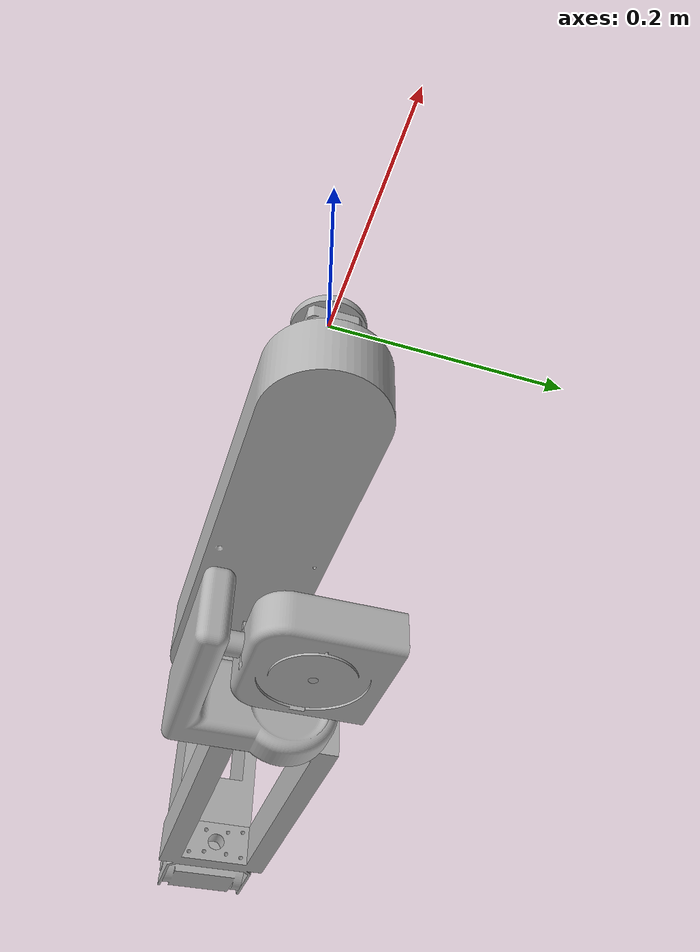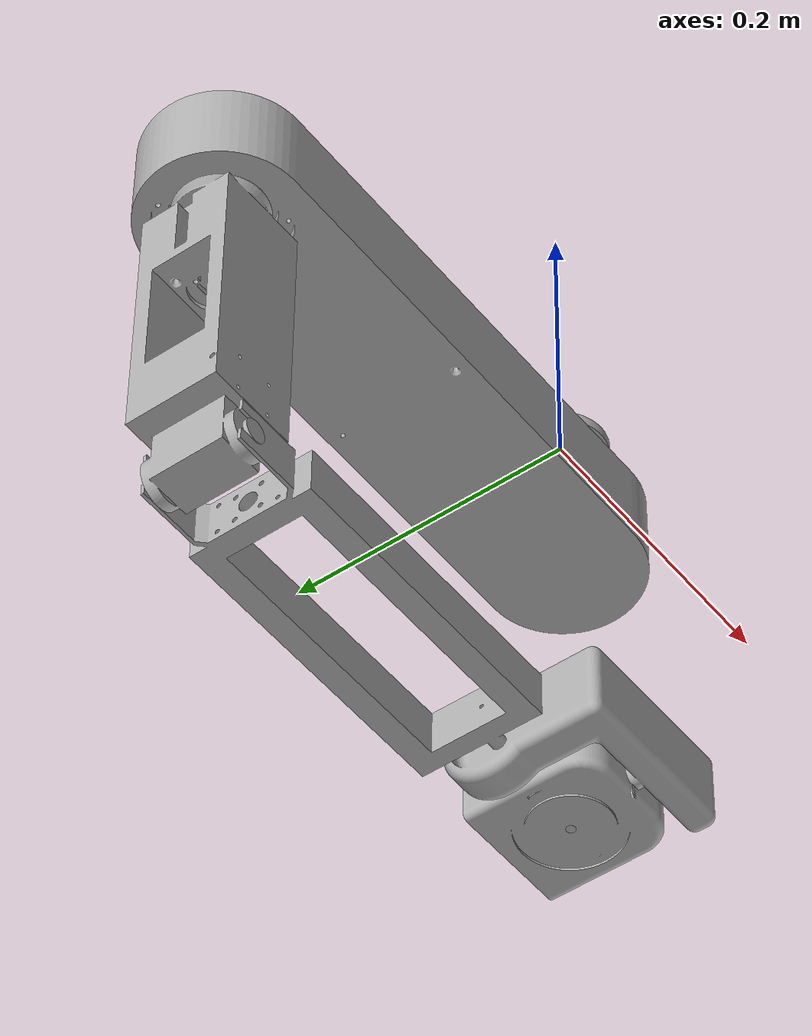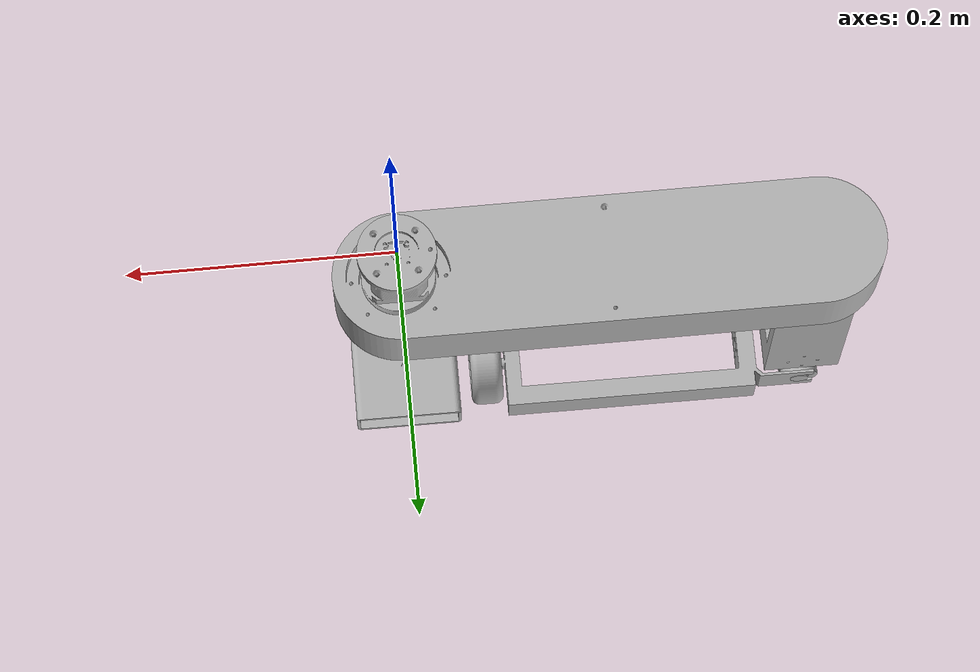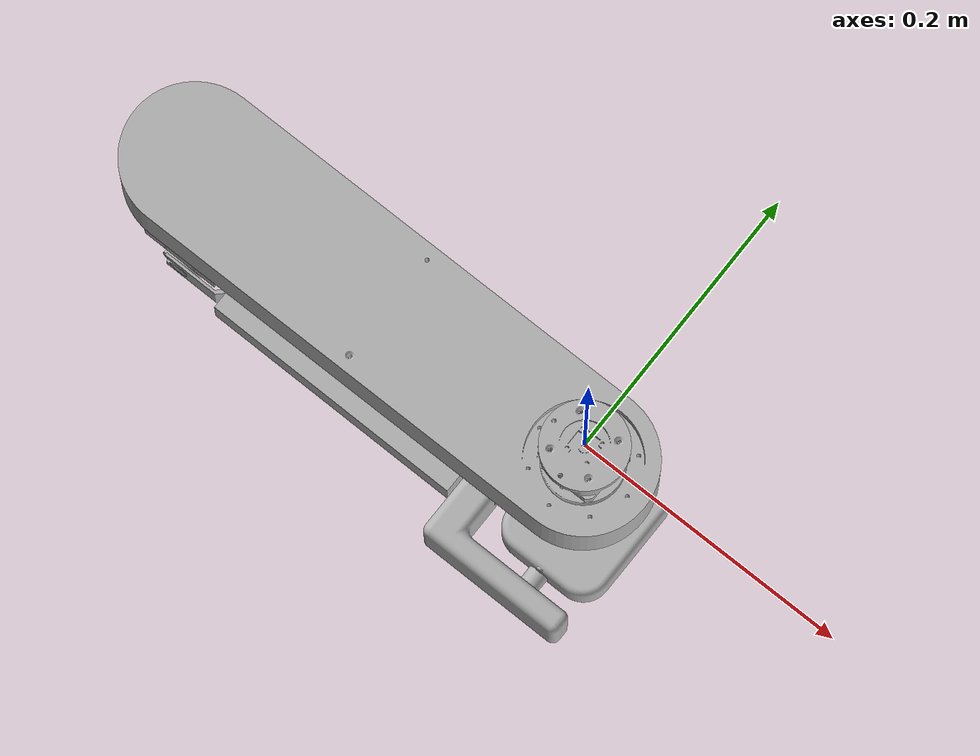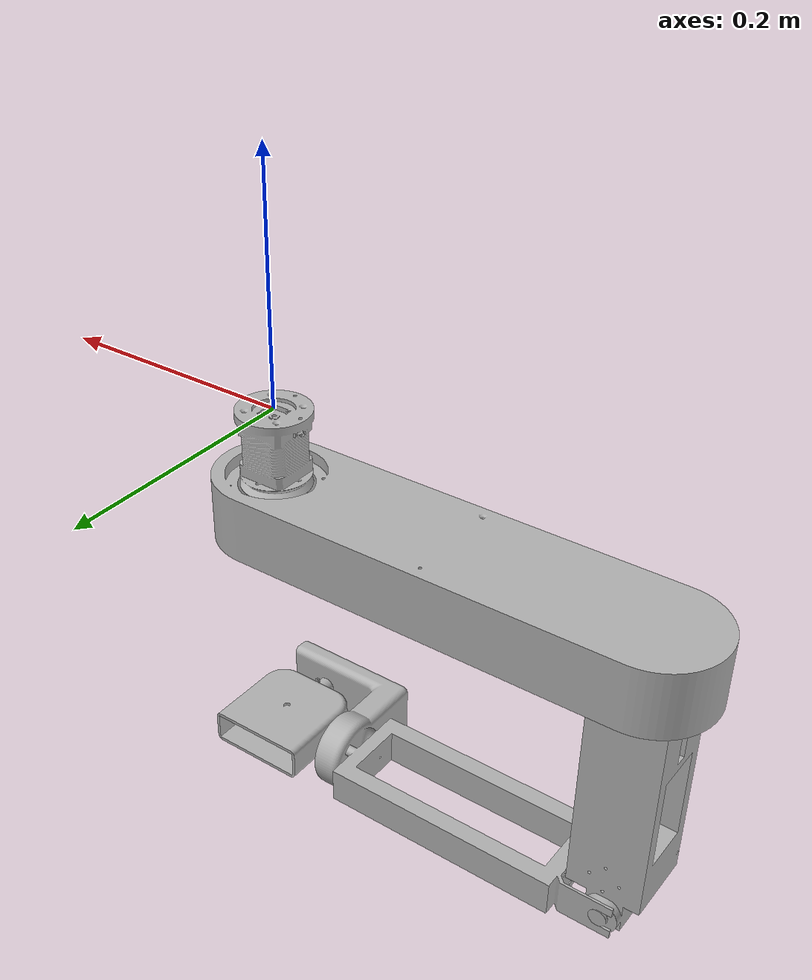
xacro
<?xml version="1.0" ?>
<robot name="surg_bot" xmlns:xacro="http://www.ros.org/wiki/xacro">

<xacro:include filename="$(find surg_bot_description)/urdf/materials.xacro" />
<xacro:include filename="$(find surg_bot_description)/urdf/surg_bot.trans" />
<xacro:include filename="$(find surg_bot_description)/urdf/surg_bot.gazebo" />
<link name="base_link">
  <inertial>
    <origin xyz="-4.031295976229773e-05 2.551630137478745e-06 -0.02955399218078996" rpy="0 0 0"/>
    <mass value="0.4069489619511855"/>
    <inertia ixx="0.000314" iyy="0.000315" izz="0.000167" ixy="-0.0" iyz="0.0" ixz="0.0"/>
  </inertial>
  <visual>
    <origin xyz="0 0 0" rpy="0 0 0"/>
    <geometry>
      <mesh filename="file://$(find surg_bot_description)/meshes/base_link.stl" scale="0.001 0.001 0.001"/>
    </geometry>
    <material name="silver"/>
  </visual>
  <collision>
    <origin xyz="0 0 0" rpy="0 0 0"/>
    <geometry>
      <mesh filename="file://$(find surg_bot_description)/meshes/base_link.stl" scale="0.001 0.001 0.001"/>
    </geometry>
  </collision>
</link>

<link name="link1_1_1">
  <inertial>
    <origin xyz="-0.16000855446108672 0.0006982755267684382 -0.017607750000049494" rpy="0 0 0"/>
    <mass value="8.367890341080868"/>
    <inertia ixx="0.012227" iyy="0.118359" izz="0.124365" ixy="0.000473" iyz="-9e-06" ixz="0.001924"/>
  </inertial>
  <visual>
    <origin xyz="1e-05 -1e-05 0.063784" rpy="0 0 0"/>
    <geometry>
      <mesh filename="file://$(find surg_bot_description)/meshes/link1_1_1.stl" scale="0.001 0.001 0.001"/>
    </geometry>
    <material name="silver"/>
  </visual>
  <collision>
    <origin xyz="1e-05 -1e-05 0.063784" rpy="0 0 0"/>
    <geometry>
      <mesh filename="file://$(find surg_bot_description)/meshes/link1_1_1.stl" scale="0.001 0.001 0.001"/>
    </geometry>
  </collision>
</link>

<link name="link2_1_1">
  <inertial>
    <origin xyz="0.0002224902754690561 2.4896581295632018e-05 -0.1173741177356834" rpy="0 0 0"/>
    <mass value="3.3490679501648595"/>
    <inertia ixx="0.014417" iyy="0.014057" izz="0.002264" ixy="-2e-06" iyz="8e-06" ixz="-5.7e-05"/>
  </inertial>
  <visual>
    <origin xyz="0.320027 -0.001437 0.099" rpy="0 0 0"/>
    <geometry>
      <mesh filename="file://$(find surg_bot_description)/meshes/link2_1_1.stl" scale="0.001 0.001 0.001"/>
    </geometry>
    <material name="silver"/>
  </visual>
  <collision>
    <origin xyz="0.320027 -0.001437 0.099" rpy="0 0 0"/>
    <geometry>
      <mesh filename="file://$(find surg_bot_description)/meshes/link2_1_1.stl" scale="0.001 0.001 0.001"/>
    </geometry>
  </collision>
</link>

<link name="link3_1">
  <inertial>
    <origin xyz="0.13549556866217186 0.030032525454134127 -4.999999703714231e-07" rpy="0 0 0"/>
    <mass value="1.7602626049739658"/>
    <inertia ixx="0.001766" iyy="0.008244" izz="0.009744" ixy="3.2e-05" iyz="0.0" ixz="0.0"/>
  </inertial>
  <visual>
    <origin xyz="0.320168 0.029172 0.303283" rpy="0 0 0"/>
    <geometry>
      <mesh filename="file://$(find surg_bot_description)/meshes/link3_1.stl" scale="0.001 0.001 0.001"/>
    </geometry>
    <material name="silver"/>
  </visual>
  <collision>
    <origin xyz="0.320168 0.029172 0.303283" rpy="0 0 0"/>
    <geometry>
      <mesh filename="file://$(find surg_bot_description)/meshes/link3_1.stl" scale="0.001 0.001 0.001"/>
    </geometry>
  </collision>
</link>

<link name="link4_1">
  <inertial>
    <origin xyz="0.02600502860609198 -0.04510246183047751 -5.119758128557805e-07" rpy="0 0 0"/>
    <mass value="1.4039319321687402"/>
    <inertia ixx="0.00142" iyy="0.001886" izz="0.002652" ixy="0.000674" iyz="0.0" ixz="-0.0"/>
  </inertial>
  <visual>
    <origin xyz="0.065316 -0.000267 0.303283" rpy="0 0 0"/>
    <geometry>
      <mesh filename="file://$(find surg_bot_description)/meshes/link4_1.stl" scale="0.001 0.001 0.001"/>
    </geometry>
    <material name="silver"/>
  </visual>
  <collision>
    <origin xyz="0.065316 -0.000267 0.303283" rpy="0 0 0"/>
    <geometry>
      <mesh filename="file://$(find surg_bot_description)/meshes/link4_1.stl" scale="0.001 0.001 0.001"/>
    </geometry>
  </collision>
</link>

<link name="link5_1_1">
  <inertial>
    <origin xyz="0.0002259892794144409 0.03886333123442502 0.0005887467592404771" rpy="0 0 0"/>
    <mass value="0.38469776659589416"/>
    <inertia ixx="0.000309" iyy="0.000348" izz="0.00055" ixy="0.0" iyz="-1e-06" ixz="0.0"/>
  </inertial>
  <visual>
    <origin xyz="0.000274 0.041925 0.303283" rpy="0 0 0"/>
    <geometry>
      <mesh filename="file://$(find surg_bot_description)/meshes/link5_1_1.stl" scale="0.001 0.001 0.001"/>
    </geometry>
    <material name="silver"/>
  </visual>
  <collision>
    <origin xyz="0.000274 0.041925 0.303283" rpy="0 0 0"/>
    <geometry>
      <mesh filename="file://$(find surg_bot_description)/meshes/link5_1_1.stl" scale="0.001 0.001 0.001"/>
    </geometry>
  </collision>
</link>

<link name="end_effector_1_1">
  <inertial>
    <origin xyz="-2.7668857425572823e-07 -2.5305395503594057e-07 0.002499500002298649" rpy="0 0 0"/>
    <mass value="0.001098697673021953"/>
    <inertia ixx="0.0" iyy="0.0" izz="0.0" ixy="-0.0" iyz="-0.0" ixz="0.0"/>
  </inertial>
  <visual>
    <origin xyz="6.9e-05 0.000575 0.318033" rpy="0 0 0"/>
    <geometry>
      <mesh filename="file://$(find surg_bot_description)/meshes/end_effector_1_1.stl" scale="0.001 0.001 0.001"/>
    </geometry>
    <material name="silver"/>
  </visual>
  <collision>
    <origin xyz="6.9e-05 0.000575 0.318033" rpy="0 0 0"/>
    <geometry>
      <mesh filename="file://$(find surg_bot_description)/meshes/end_effector_1_1.stl" scale="0.001 0.001 0.001"/>
    </geometry>
  </collision>
</link>

<joint name="joint0" type="continuous">
  <origin xyz="-1e-05 1e-05 -0.063784" rpy="0 0 0"/>
  <parent link="base_link"/>
  <child link="link1_1_1"/>
  <axis xyz="0.0 0.0 1.0"/>
</joint>

<joint name="joint1" type="continuous">
  <origin xyz="-0.320017 0.001427 -0.035216" rpy="0 0 0"/>
  <parent link="link1_1_1"/>
  <child link="link2_1_1"/>
  <axis xyz="0.0 0.0 1.0"/>
</joint>

<joint name="joint2" type="revolute">
  <origin xyz="-0.000141 -0.030609 -0.204283" rpy="0 0 0"/>
  <parent link="link2_1_1"/>
  <child link="link3_1"/>
  <axis xyz="-0.004946 -0.999988 0.0"/>
  <limit upper="0.174533" lower="-1.570796" effort="100" velocity="100"/>
</joint>

<joint name="joint3" type="revolute">
  <origin xyz="0.254852 0.029439 0.0" rpy="0 0 0"/>
  <parent link="link3_1"/>
  <child link="link4_1"/>
  <axis xyz="0.999988 -0.004946 0.0"/>
  <limit upper="2.268928" lower="-2.268928" effort="100" velocity="100"/>
</joint>

<joint name="joint4" type="continuous">
  <origin xyz="0.065042 -0.042192 0.0" rpy="0 0 0"/>
  <parent link="link4_1"/>
  <child link="link5_1_1"/>
  <axis xyz="0.004946 0.999988 -0.0"/>
</joint>

<joint name="rigid1" type="fixed">
  <origin xyz="0.000205 0.04135 -0.01475" rpy="0 0 0"/>
  <parent link="link5_1_1"/>
  <child link="end_effector_1_1"/>
</joint>

</robot>

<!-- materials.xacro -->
<robot name="surg_bot" xmlns:xacro="http://www.ros.org/wiki/xacro" >

<material name="silver">
  <color rgba="0.700 0.700 0.700 1.000"/>
</material>

</robot>

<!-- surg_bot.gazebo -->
<robot name="surg_bot" xmlns:xacro="http://www.ros.org/wiki/xacro" >

<xacro:property name="body_color" value="Gazebo/Silver" />

<gazebo>
  <plugin name="control" filename="libgazebo_ros_control.so"/>
</gazebo>
<gazebo reference="base_link">
  <material>${body_color}</material>
  <mu1>0.2</mu1>
  <mu2>0.2</mu2>
  <self_collide>true</self_collide>
  <gravity>true</gravity>
</gazebo>

<gazebo reference="link1_1_1">
  <material>${body_color}</material>
  <mu1>0.2</mu1>
  <mu2>0.2</mu2>
  <self_collide>true</self_collide>
</gazebo>

<gazebo reference="link2_1_1">
  <material>${body_color}</material>
  <mu1>0.2</mu1>
  <mu2>0.2</mu2>
  <self_collide>true</self_collide>
</gazebo>

<gazebo reference="link3_1_1">
  <material>${body_color}</material>
  <mu1>0.2</mu1>
  <mu2>0.2</mu2>
  <self_collide>true</self_collide>
</gazebo>

<gazebo reference="link4_1_1">
  <material>${body_color}</material>
  <mu1>0.2</mu1>
  <mu2>0.2</mu2>
  <self_collide>true</self_collide>
</gazebo>

<gazebo reference="link5_1_1">
  <material>${body_color}</material>
  <mu1>0.2</mu1>
  <mu2>0.2</mu2>
  <self_collide>true</self_collide>
</gazebo>

<gazebo reference="end_effector_1_1">
  <material>${body_color}</material>
  <mu1>0.2</mu1>
  <mu2>0.2</mu2>
  <self_collide>true</self_collide>
</gazebo>

</robot>
